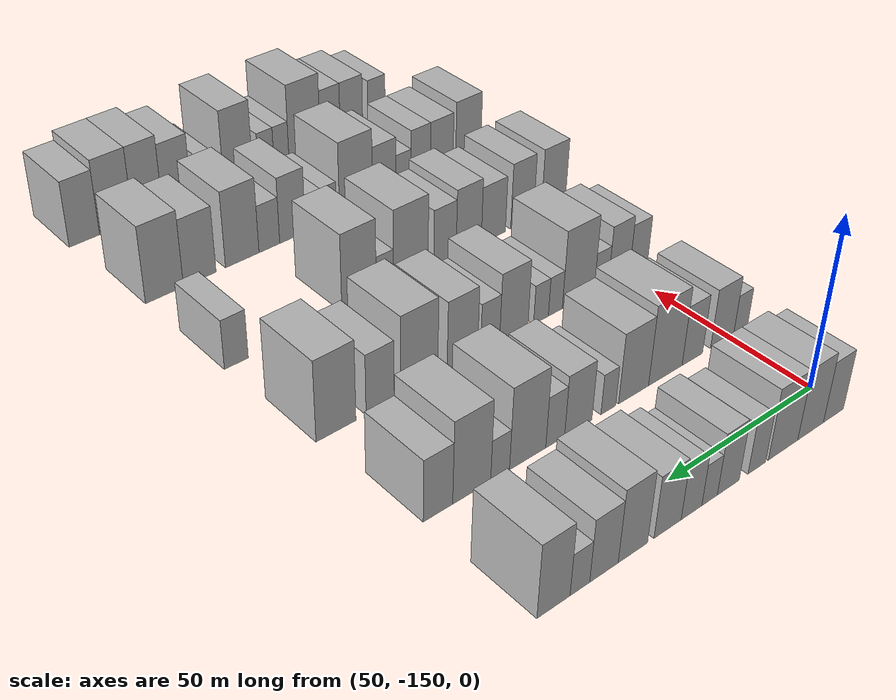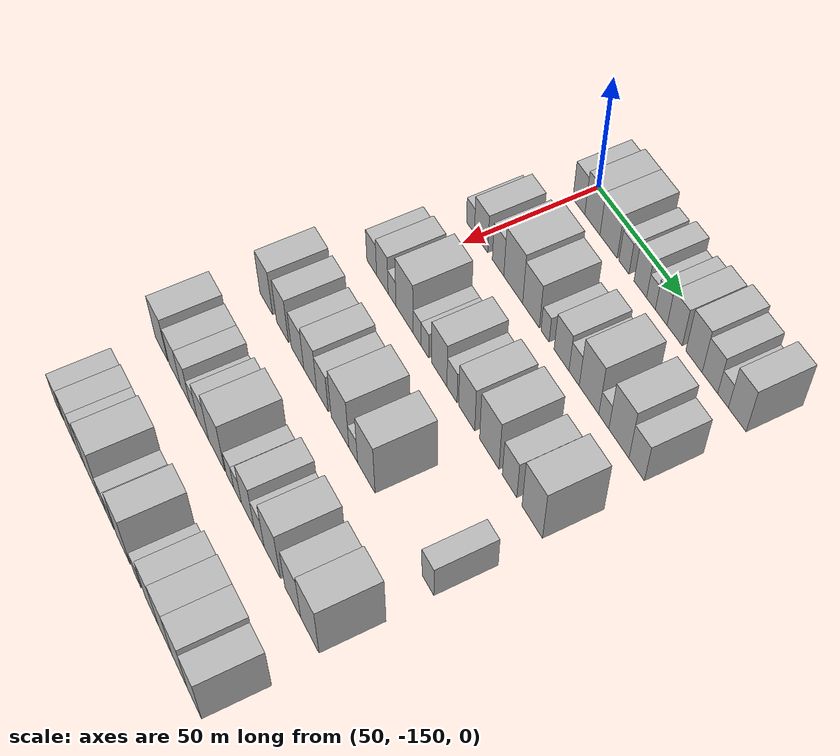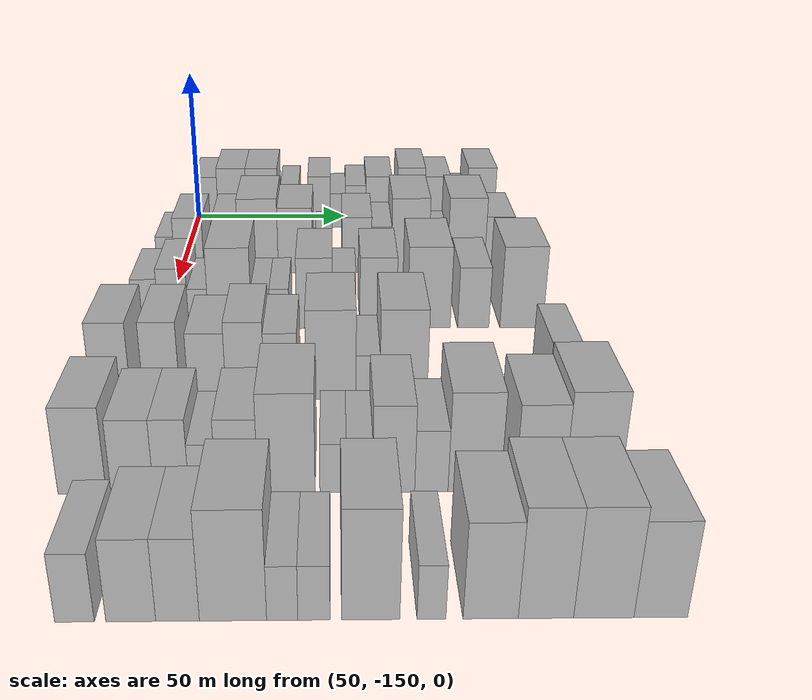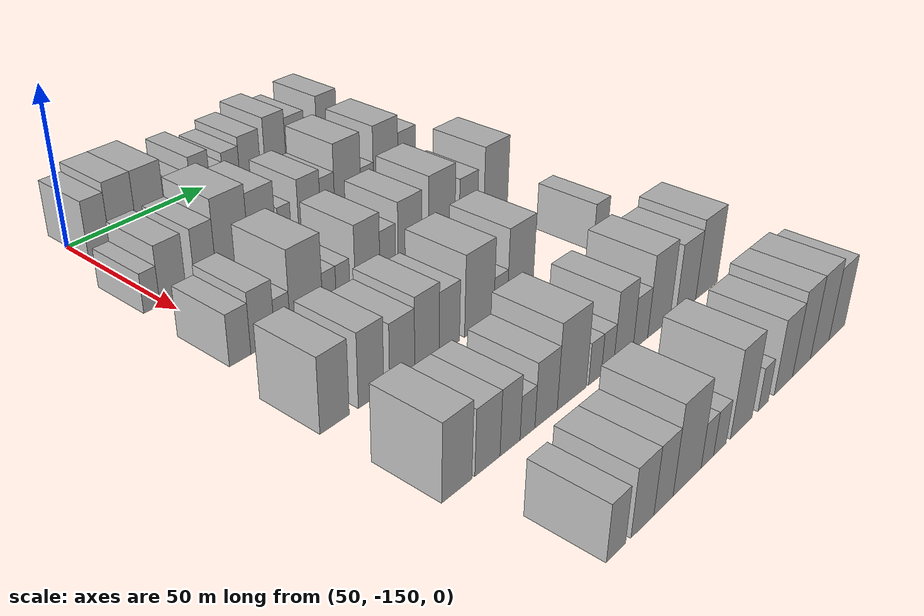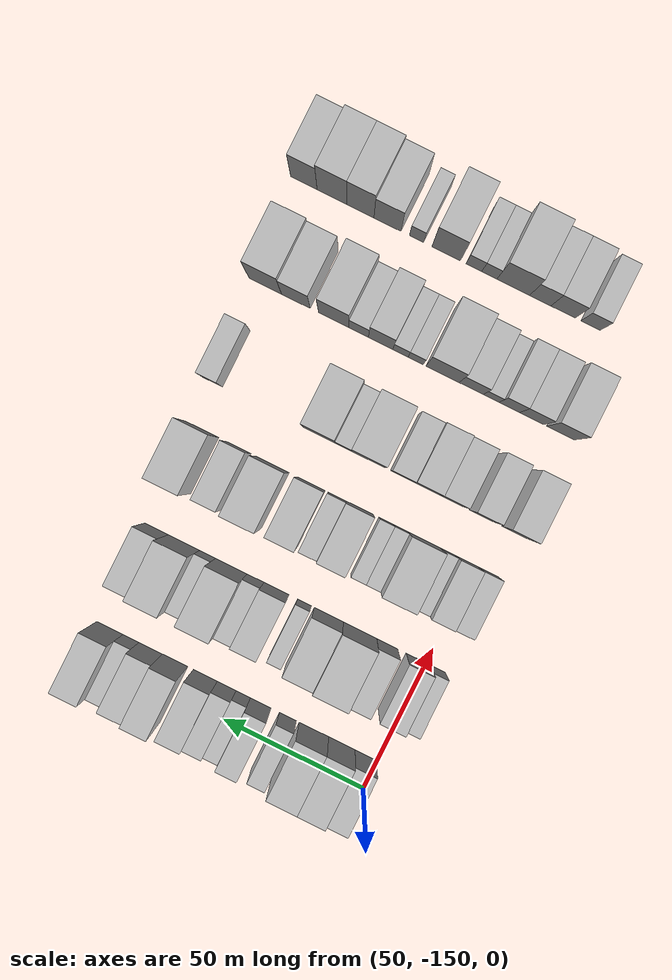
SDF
<sdf version="1.6">
 <world name="default">
  <model name="building_49">
   <static>1</static>
   <pose>50.0000 -145.9046 0 0.000000 0.000000 0.000000</pose>
   <link name="link">
    <pose>0 0 9.00 0 0 0</pose>
    <collision name="collision"><geometry><box><size>20.0000 7.4969 18.0000</size></box></geometry></collision>
    <visual name="visual">
     <cast_shadows>0</cast_shadows>
     <geometry><box><size>20.0000 7.4969 18.0000</size></box></geometry>
     <material>
      <script>
       <uri>model://HANNAS_wall/materials/scripts</uri>
       <uri>model://HANNAS_wall/materials/textures</uri>
       <name>vrc/HANNAS_wall</name>
      </script>
     </material>
    </visual>
   </link>
  </model>
  <model name="building_50">
   <static>1</static>
   <pose>50.0000 -137.4338 0 0.000000 0.000000 0.000000</pose>
   <link name="link">
    <pose>0 0 10.50 0 0 0</pose>
    <collision name="collision"><geometry><box><size>20.0000 9.4446 21.0000</size></box></geometry></collision>
    <visual name="visual">
     <cast_shadows>0</cast_shadows>
     <geometry><box><size>20.0000 9.4446 21.0000</size></box></geometry>
     <material>
      <script>
       <uri>model://HANNAS_wall/materials/scripts</uri>
       <uri>model://HANNAS_wall/materials/textures</uri>
       <name>vrc/HANNAS_wall</name>
      </script>
     </material>
    </visual>
   </link>
  </model>
  <model name="building_51">
   <static>1</static>
   <pose>50.0000 -127.4654 0 0.000000 0.000000 0.000000</pose>
   <link name="link">
    <pose>0 0 10.50 0 0 0</pose>
    <collision name="collision"><geometry><box><size>20.0000 10.4922 21.0000</size></box></geometry></collision>
    <visual name="visual">
     <cast_shadows>0</cast_shadows>
     <geometry><box><size>20.0000 10.4922 21.0000</size></box></geometry>
     <material>
      <script>
       <uri>model://HANNAS_wall/materials/scripts</uri>
       <uri>model://HANNAS_wall/materials/textures</uri>
       <name>vrc/HANNAS_wall</name>
      </script>
     </material>
    </visual>
   </link>
  </model>
  <model name="building_52">
   <static>1</static>
   <pose>50.0000 -118.1912 0 0.000000 0.000000 0.000000</pose>
   <link name="link">
    <pose>0 0 7.50 0 0 0</pose>
    <collision name="collision"><geometry><box><size>20.0000 6.0561 15.0000</size></box></geometry></collision>
    <visual name="visual">
     <cast_shadows>0</cast_shadows>
     <geometry><box><size>20.0000 6.0561 15.0000</size></box></geometry>
     <material>
      <script>
       <uri>model://HANNAS_wall/materials/scripts</uri>
       <uri>model://HANNAS_wall/materials/textures</uri>
       <name>vrc/HANNAS_wall</name>
      </script>
     </material>
    </visual>
   </link>
  </model>
  <model name="building_53">
   <static>1</static>
   <pose>50.0000 -108.4824 0 0.000000 0.000000 0.000000</pose>
   <link name="link">
    <pose>0 0 9.00 0 0 0</pose>
    <collision name="collision"><geometry><box><size>20.0000 7.3614 18.0000</size></box></geometry></collision>
    <visual name="visual">
     <cast_shadows>0</cast_shadows>
     <geometry><box><size>20.0000 7.3614 18.0000</size></box></geometry>
     <material>
      <script>
       <uri>model://HANNAS_wall/materials/scripts</uri>
       <uri>model://HANNAS_wall/materials/textures</uri>
       <name>vrc/HANNAS_wall</name>
      </script>
     </material>
    </visual>
   </link>
  </model>
  <model name="building_54">
   <static>1</static>
   <pose>50.0000 -102.2450 0 0.000000 0.000000 0.000000</pose>
   <link name="link">
    <pose>0 0 6.00 0 0 0</pose>
    <collision name="collision"><geometry><box><size>20.0000 5.1135 12.0000</size></box></geometry></collision>
    <visual name="visual">
     <cast_shadows>0</cast_shadows>
     <geometry><box><size>20.0000 5.1135 12.0000</size></box></geometry>
     <material>
      <script>
       <uri>model://HANNAS_wall/materials/scripts</uri>
       <uri>model://HANNAS_wall/materials/textures</uri>
       <name>vrc/HANNAS_wall</name>
      </script>
     </material>
    </visual>
   </link>
  </model>
  <model name="building_55">
   <static>1</static>
   <pose>50.0000 -96.3450 0 0.000000 0.000000 0.000000</pose>
   <link name="link">
    <pose>0 0 7.50 0 0 0</pose>
    <collision name="collision"><geometry><box><size>20.0000 6.6864 15.0000</size></box></geometry></collision>
    <visual name="visual">
     <cast_shadows>0</cast_shadows>
     <geometry><box><size>20.0000 6.6864 15.0000</size></box></geometry>
     <material>
      <script>
       <uri>model://HANNAS_wall/materials/scripts</uri>
       <uri>model://HANNAS_wall/materials/textures</uri>
       <name>vrc/HANNAS_wall</name>
      </script>
     </material>
    </visual>
   </link>
  </model>
  <model name="building_56">
   <static>1</static>
   <pose>50.0000 -88.7126 0 0.000000 0.000000 0.000000</pose>
   <link name="link">
    <pose>0 0 9.00 0 0 0</pose>
    <collision name="collision"><geometry><box><size>20.0000 8.5783 18.0000</size></box></geometry></collision>
    <visual name="visual">
     <cast_shadows>0</cast_shadows>
     <geometry><box><size>20.0000 8.5783 18.0000</size></box></geometry>
     <material>
      <script>
       <uri>model://HANNAS_wall/materials/scripts</uri>
       <uri>model://HANNAS_wall/materials/textures</uri>
       <name>vrc/HANNAS_wall</name>
      </script>
     </material>
    </visual>
   </link>
  </model>
  <model name="building_57">
   <static>1</static>
   <pose>50.0000 -77.9405 0 0.000000 0.000000 0.000000</pose>
   <link name="link">
    <pose>0 0 10.50 0 0 0</pose>
    <collision name="collision"><geometry><box><size>20.0000 8.9660 21.0000</size></box></geometry></collision>
    <visual name="visual">
     <cast_shadows>0</cast_shadows>
     <geometry><box><size>20.0000 8.9660 21.0000</size></box></geometry>
     <material>
      <script>
       <uri>model://HANNAS_wall/materials/scripts</uri>
       <uri>model://HANNAS_wall/materials/textures</uri>
       <name>vrc/HANNAS_wall</name>
      </script>
     </material>
    </visual>
   </link>
  </model>
  <model name="building_58">
   <static>1</static>
   <pose>50.0000 -69.2409 0 0.000000 0.000000 0.000000</pose>
   <link name="link">
    <pose>0 0 9.00 0 0 0</pose>
    <collision name="collision"><geometry><box><size>20.0000 8.4332 18.0000</size></box></geometry></collision>
    <visual name="visual">
     <cast_shadows>0</cast_shadows>
     <geometry><box><size>20.0000 8.4332 18.0000</size></box></geometry>
     <material>
      <script>
       <uri>model://HANNAS_wall/materials/scripts</uri>
       <uri>model://HANNAS_wall/materials/textures</uri>
       <name>vrc/HANNAS_wall</name>
      </script>
     </material>
    </visual>
   </link>
  </model>
  <model name="building_59">
   <static>1</static>
   <pose>50.0000 -62.1792 0 0.000000 0.000000 0.000000</pose>
   <link name="link">
    <pose>0 0 6.00 0 0 0</pose>
    <collision name="collision"><geometry><box><size>20.0000 5.6902 12.0000</size></box></geometry></collision>
    <visual name="visual">
     <cast_shadows>0</cast_shadows>
     <geometry><box><size>20.0000 5.6902 12.0000</size></box></geometry>
     <material>
      <script>
       <uri>model://HANNAS_wall/materials/scripts</uri>
       <uri>model://HANNAS_wall/materials/textures</uri>
       <name>vrc/HANNAS_wall</name>
      </script>
     </material>
    </visual>
   </link>
  </model>
  <model name="building_60">
   <static>1</static>
   <pose>50.0000 -54.6696 0 0.000000 0.000000 0.000000</pose>
   <link name="link">
    <pose>0 0 10.50 0 0 0</pose>
    <collision name="collision"><geometry><box><size>20.0000 9.3292 21.0000</size></box></geometry></collision>
    <visual name="visual">
     <cast_shadows>0</cast_shadows>
     <geometry><box><size>20.0000 9.3292 21.0000</size></box></geometry>
     <material>
      <script>
       <uri>model://HANNAS_wall/materials/scripts</uri>
       <uri>model://HANNAS_wall/materials/textures</uri>
       <name>vrc/HANNAS_wall</name>
      </script>
     </material>
    </visual>
   </link>
  </model>
  <model name="building_178">
   <static>1</static>
   <pose>85.0000 -154.3340 0 0.000000 0.000000 0.000000</pose>
   <link name="link">
    <pose>0 0 6.00 0 0 0</pose>
    <collision name="collision"><geometry><box><size>20.0000 5.2907 12.0000</size></box></geometry></collision>
    <visual name="visual">
     <cast_shadows>0</cast_shadows>
     <geometry><box><size>20.0000 5.2907 12.0000</size></box></geometry>
     <material>
      <script>
       <uri>model://HANNAS_wall/materials/scripts</uri>
       <uri>model://HANNAS_wall/materials/textures</uri>
       <name>vrc/HANNAS_wall</name>
      </script>
     </material>
    </visual>
   </link>
  </model>
  <model name="building_179">
   <static>1</static>
   <pose>85.0000 -147.2985 0 0.000000 0.000000 0.000000</pose>
   <link name="link">
    <pose>0 0 9.00 0 0 0</pose>
    <collision name="collision"><geometry><box><size>20.0000 8.7803 18.0000</size></box></geometry></collision>
    <visual name="visual">
     <cast_shadows>0</cast_shadows>
     <geometry><box><size>20.0000 8.7803 18.0000</size></box></geometry>
     <material>
      <script>
       <uri>model://HANNAS_wall/materials/scripts</uri>
       <uri>model://HANNAS_wall/materials/textures</uri>
       <name>vrc/HANNAS_wall</name>
      </script>
     </material>
    </visual>
   </link>
  </model>
  <model name="building_180">
   <static>1</static>
   <pose>85.0000 -136.1703 0 0.000000 0.000000 0.000000</pose>
   <link name="link">
    <pose>0 0 9.00 0 0 0</pose>
    <collision name="collision"><geometry><box><size>20.0000 7.4761 18.0000</size></box></geometry></collision>
    <visual name="visual">
     <cast_shadows>0</cast_shadows>
     <geometry><box><size>20.0000 7.4761 18.0000</size></box></geometry>
     <material>
      <script>
       <uri>model://HANNAS_wall/materials/scripts</uri>
       <uri>model://HANNAS_wall/materials/textures</uri>
       <name>vrc/HANNAS_wall</name>
      </script>
     </material>
    </visual>
   </link>
  </model>
  <model name="building_181">
   <static>1</static>
   <pose>85.0000 -126.4591 0 0.000000 0.000000 0.000000</pose>
   <link name="link">
    <pose>0 0 12.00 0 0 0</pose>
    <collision name="collision"><geometry><box><size>20.0000 11.9464 24.0000</size></box></geometry></collision>
    <visual name="visual">
     <cast_shadows>0</cast_shadows>
     <geometry><box><size>20.0000 11.9464 24.0000</size></box></geometry>
     <material>
      <script>
       <uri>model://HANNAS_wall/materials/scripts</uri>
       <uri>model://HANNAS_wall/materials/textures</uri>
       <name>vrc/HANNAS_wall</name>
      </script>
     </material>
    </visual>
   </link>
  </model>
  <model name="building_182">
   <static>1</static>
   <pose>85.0000 -115.3145 0 0.000000 0.000000 0.000000</pose>
   <link name="link">
    <pose>0 0 10.50 0 0 0</pose>
    <collision name="collision"><geometry><box><size>20.0000 10.3427 21.0000</size></box></geometry></collision>
    <visual name="visual">
     <cast_shadows>0</cast_shadows>
     <geometry><box><size>20.0000 10.3427 21.0000</size></box></geometry>
     <material>
      <script>
       <uri>model://HANNAS_wall/materials/scripts</uri>
       <uri>model://HANNAS_wall/materials/textures</uri>
       <name>vrc/HANNAS_wall</name>
      </script>
     </material>
    </visual>
   </link>
  </model>
  <model name="building_183">
   <static>1</static>
   <pose>85.0000 -106.6710 0 0.000000 0.000000 0.000000</pose>
   <link name="link">
    <pose>0 0 6.00 0 0 0</pose>
    <collision name="collision"><geometry><box><size>20.0000 4.9444 12.0000</size></box></geometry></collision>
    <visual name="visual">
     <cast_shadows>0</cast_shadows>
     <geometry><box><size>20.0000 4.9444 12.0000</size></box></geometry>
     <material>
      <script>
       <uri>model://HANNAS_wall/materials/scripts</uri>
       <uri>model://HANNAS_wall/materials/textures</uri>
       <name>vrc/HANNAS_wall</name>
      </script>
     </material>
    </visual>
   </link>
  </model>
  <model name="building_184">
   <static>1</static>
   <pose>85.0000 -96.7489 0 0.000000 0.000000 0.000000</pose>
   <link name="link">
    <pose>0 0 9.00 0 0 0</pose>
    <collision name="collision"><geometry><box><size>20.0000 8.8998 18.0000</size></box></geometry></collision>
    <visual name="visual">
     <cast_shadows>0</cast_shadows>
     <geometry><box><size>20.0000 8.8998 18.0000</size></box></geometry>
     <material>
      <script>
       <uri>model://HANNAS_wall/materials/scripts</uri>
       <uri>model://HANNAS_wall/materials/textures</uri>
       <name>vrc/HANNAS_wall</name>
      </script>
     </material>
    </visual>
   </link>
  </model>
  <model name="building_185">
   <static>1</static>
   <pose>85.0000 -89.2930 0 0.000000 0.000000 0.000000</pose>
   <link name="link">
    <pose>0 0 7.50 0 0 0</pose>
    <collision name="collision"><geometry><box><size>20.0000 6.0120 15.0000</size></box></geometry></collision>
    <visual name="visual">
     <cast_shadows>0</cast_shadows>
     <geometry><box><size>20.0000 6.0120 15.0000</size></box></geometry>
     <material>
      <script>
       <uri>model://HANNAS_wall/materials/scripts</uri>
       <uri>model://HANNAS_wall/materials/textures</uri>
       <name>vrc/HANNAS_wall</name>
      </script>
     </material>
    </visual>
   </link>
  </model>
  <model name="building_186">
   <static>1</static>
   <pose>85.0000 -80.6456 0 0.000000 0.000000 0.000000</pose>
   <link name="link">
    <pose>0 0 12.00 0 0 0</pose>
    <collision name="collision"><geometry><box><size>20.0000 11.2827 24.0000</size></box></geometry></collision>
    <visual name="visual">
     <cast_shadows>0</cast_shadows>
     <geometry><box><size>20.0000 11.2827 24.0000</size></box></geometry>
     <material>
      <script>
       <uri>model://HANNAS_wall/materials/scripts</uri>
       <uri>model://HANNAS_wall/materials/textures</uri>
       <name>vrc/HANNAS_wall</name>
      </script>
     </material>
    </visual>
   </link>
  </model>
  <model name="building_187">
   <static>1</static>
   <pose>85.0000 -72.1506 0 0.000000 0.000000 0.000000</pose>
   <link name="link">
    <pose>0 0 6.00 0 0 0</pose>
    <collision name="collision"><geometry><box><size>20.0000 5.7074 12.0000</size></box></geometry></collision>
    <visual name="visual">
     <cast_shadows>0</cast_shadows>
     <geometry><box><size>20.0000 5.7074 12.0000</size></box></geometry>
     <material>
      <script>
       <uri>model://HANNAS_wall/materials/scripts</uri>
       <uri>model://HANNAS_wall/materials/textures</uri>
       <name>vrc/HANNAS_wall</name>
      </script>
     </material>
    </visual>
   </link>
  </model>
  <model name="building_188">
   <static>1</static>
   <pose>85.0000 -63.6868 0 0.000000 0.000000 0.000000</pose>
   <link name="link">
    <pose>0 0 12.00 0 0 0</pose>
    <collision name="collision"><geometry><box><size>20.0000 11.2201 24.0000</size></box></geometry></collision>
    <visual name="visual">
     <cast_shadows>0</cast_shadows>
     <geometry><box><size>20.0000 11.2201 24.0000</size></box></geometry>
     <material>
      <script>
       <uri>model://HANNAS_wall/materials/scripts</uri>
       <uri>model://HANNAS_wall/materials/textures</uri>
       <name>vrc/HANNAS_wall</name>
      </script>
     </material>
    </visual>
   </link>
  </model>
  <model name="building_189">
   <static>1</static>
   <pose>85.0000 -53.8672 0 0.000000 0.000000 0.000000</pose>
   <link name="link">
    <pose>0 0 9.00 0 0 0</pose>
    <collision name="collision"><geometry><box><size>20.0000 8.4193 18.0000</size></box></geometry></collision>
    <visual name="visual">
     <cast_shadows>0</cast_shadows>
     <geometry><box><size>20.0000 8.4193 18.0000</size></box></geometry>
     <material>
      <script>
       <uri>model://HANNAS_wall/materials/scripts</uri>
       <uri>model://HANNAS_wall/materials/textures</uri>
       <name>vrc/HANNAS_wall</name>
      </script>
     </material>
    </visual>
   </link>
  </model>
  <model name="building_301">
   <static>1</static>
   <pose>120.0000 -154.4039 0 0.000000 0.000000 0.000000</pose>
   <link name="link">
    <pose>0 0 7.50 0 0 0</pose>
    <collision name="collision"><geometry><box><size>20.0000 6.9218 15.0000</size></box></geometry></collision>
    <visual name="visual">
     <cast_shadows>0</cast_shadows>
     <geometry><box><size>20.0000 6.9218 15.0000</size></box></geometry>
     <material>
      <script>
       <uri>model://HANNAS_wall/materials/scripts</uri>
       <uri>model://HANNAS_wall/materials/textures</uri>
       <name>vrc/HANNAS_wall</name>
      </script>
     </material>
    </visual>
   </link>
  </model>
  <model name="building_302">
   <static>1</static>
   <pose>120.0000 -146.9361 0 0.000000 0.000000 0.000000</pose>
   <link name="link">
    <pose>0 0 9.00 0 0 0</pose>
    <collision name="collision"><geometry><box><size>20.0000 8.0138 18.0000</size></box></geometry></collision>
    <visual name="visual">
     <cast_shadows>0</cast_shadows>
     <geometry><box><size>20.0000 8.0138 18.0000</size></box></geometry>
     <material>
      <script>
       <uri>model://HANNAS_wall/materials/scripts</uri>
       <uri>model://HANNAS_wall/materials/textures</uri>
       <name>vrc/HANNAS_wall</name>
      </script>
     </material>
    </visual>
   </link>
  </model>
  <model name="building_303">
   <static>1</static>
   <pose>120.0000 -140.2536 0 0.000000 0.000000 0.000000</pose>
   <link name="link">
    <pose>0 0 6.00 0 0 0</pose>
    <collision name="collision"><geometry><box><size>20.0000 5.3513 12.0000</size></box></geometry></collision>
    <visual name="visual">
     <cast_shadows>0</cast_shadows>
     <geometry><box><size>20.0000 5.3513 12.0000</size></box></geometry>
     <material>
      <script>
       <uri>model://HANNAS_wall/materials/scripts</uri>
       <uri>model://HANNAS_wall/materials/textures</uri>
       <name>vrc/HANNAS_wall</name>
      </script>
     </material>
    </visual>
   </link>
  </model>
  <model name="building_304">
   <static>1</static>
   <pose>120.0000 -131.7788 0 0.000000 0.000000 0.000000</pose>
   <link name="link">
    <pose>0 0 12.00 0 0 0</pose>
    <collision name="collision"><geometry><box><size>20.0000 11.5983 24.0000</size></box></geometry></collision>
    <visual name="visual">
     <cast_shadows>0</cast_shadows>
     <geometry><box><size>20.0000 11.5983 24.0000</size></box></geometry>
     <material>
      <script>
       <uri>model://HANNAS_wall/materials/scripts</uri>
       <uri>model://HANNAS_wall/materials/textures</uri>
       <name>vrc/HANNAS_wall</name>
      </script>
     </material>
    </visual>
   </link>
  </model>
  <model name="building_305">
   <static>1</static>
   <pose>120.0000 -123.4909 0 0.000000 0.000000 0.000000</pose>
   <link name="link">
    <pose>0 0 6.00 0 0 0</pose>
    <collision name="collision"><geometry><box><size>20.0000 4.9775 12.0000</size></box></geometry></collision>
    <visual name="visual">
     <cast_shadows>0</cast_shadows>
     <geometry><box><size>20.0000 4.9775 12.0000</size></box></geometry>
     <material>
      <script>
       <uri>model://HANNAS_wall/materials/scripts</uri>
       <uri>model://HANNAS_wall/materials/textures</uri>
       <name>vrc/HANNAS_wall</name>
      </script>
     </material>
    </visual>
   </link>
  </model>
  <model name="building_306">
   <static>1</static>
   <pose>120.0000 -118.4007 0 0.000000 0.000000 0.000000</pose>
   <link name="link">
    <pose>0 0 6.00 0 0 0</pose>
    <collision name="collision"><geometry><box><size>20.0000 5.2030 12.0000</size></box></geometry></collision>
    <visual name="visual">
     <cast_shadows>0</cast_shadows>
     <geometry><box><size>20.0000 5.2030 12.0000</size></box></geometry>
     <material>
      <script>
       <uri>model://HANNAS_wall/materials/scripts</uri>
       <uri>model://HANNAS_wall/materials/textures</uri>
       <name>vrc/HANNAS_wall</name>
      </script>
     </material>
    </visual>
   </link>
  </model>
  <model name="building_307">
   <static>1</static>
   <pose>120.0000 -108.9525 0 0.000000 0.000000 0.000000</pose>
   <link name="link">
    <pose>0 0 10.50 0 0 0</pose>
    <collision name="collision"><geometry><box><size>20.0000 9.6935 21.0000</size></box></geometry></collision>
    <visual name="visual">
     <cast_shadows>0</cast_shadows>
     <geometry><box><size>20.0000 9.6935 21.0000</size></box></geometry>
     <material>
      <script>
       <uri>model://HANNAS_wall/materials/scripts</uri>
       <uri>model://HANNAS_wall/materials/textures</uri>
       <name>vrc/HANNAS_wall</name>
      </script>
     </material>
    </visual>
   </link>
  </model>
  <model name="building_308">
   <static>1</static>
   <pose>120.0000 -100.9154 0 0.000000 0.000000 0.000000</pose>
   <link name="link">
    <pose>0 0 7.50 0 0 0</pose>
    <collision name="collision"><geometry><box><size>20.0000 6.3807 15.0000</size></box></geometry></collision>
    <visual name="visual">
     <cast_shadows>0</cast_shadows>
     <geometry><box><size>20.0000 6.3807 15.0000</size></box></geometry>
     <material>
      <script>
       <uri>model://HANNAS_wall/materials/scripts</uri>
       <uri>model://HANNAS_wall/materials/textures</uri>
       <name>vrc/HANNAS_wall</name>
      </script>
     </material>
    </visual>
   </link>
  </model>
  <model name="building_309">
   <static>1</static>
   <pose>120.0000 -91.7568 0 0.000000 0.000000 0.000000</pose>
   <link name="link">
    <pose>0 0 10.50 0 0 0</pose>
    <collision name="collision"><geometry><box><size>20.0000 9.9363 21.0000</size></box></geometry></collision>
    <visual name="visual">
     <cast_shadows>0</cast_shadows>
     <geometry><box><size>20.0000 9.9363 21.0000</size></box></geometry>
     <material>
      <script>
       <uri>model://HANNAS_wall/materials/scripts</uri>
       <uri>model://HANNAS_wall/materials/textures</uri>
       <name>vrc/HANNAS_wall</name>
      </script>
     </material>
    </visual>
   </link>
  </model>
  <model name="building_310">
   <static>1</static>
   <pose>120.0000 -77.9792 0 0.000000 0.000000 0.000000</pose>
   <link name="link">
    <pose>0 0 12.00 0 0 0</pose>
    <collision name="collision"><geometry><box><size>20.0000 11.6189 24.0000</size></box></geometry></collision>
    <visual name="visual">
     <cast_shadows>0</cast_shadows>
     <geometry><box><size>20.0000 11.6189 24.0000</size></box></geometry>
     <material>
      <script>
       <uri>model://HANNAS_wall/materials/scripts</uri>
       <uri>model://HANNAS_wall/materials/textures</uri>
       <name>vrc/HANNAS_wall</name>
      </script>
     </material>
    </visual>
   </link>
  </model>
  <model name="building_311">
   <static>1</static>
   <pose>120.0000 -65.9254 0 0.000000 0.000000 0.000000</pose>
   <link name="link">
    <pose>0 0 9.00 0 0 0</pose>
    <collision name="collision"><geometry><box><size>20.0000 8.4889 18.0000</size></box></geometry></collision>
    <visual name="visual">
     <cast_shadows>0</cast_shadows>
     <geometry><box><size>20.0000 8.4889 18.0000</size></box></geometry>
     <material>
      <script>
       <uri>model://HANNAS_wall/materials/scripts</uri>
       <uri>model://HANNAS_wall/materials/textures</uri>
       <name>vrc/HANNAS_wall</name>
      </script>
     </material>
    </visual>
   </link>
  </model>
  <model name="building_312">
   <static>1</static>
   <pose>120.0000 -52.8547 0 0.000000 0.000000 0.000000</pose>
   <link name="link">
    <pose>0 0 12.00 0 0 0</pose>
    <collision name="collision"><geometry><box><size>20.0000 11.6524 24.0000</size></box></geometry></collision>
    <visual name="visual">
     <cast_shadows>0</cast_shadows>
     <geometry><box><size>20.0000 11.6524 24.0000</size></box></geometry>
     <material>
      <script>
       <uri>model://HANNAS_wall/materials/scripts</uri>
       <uri>model://HANNAS_wall/materials/textures</uri>
       <name>vrc/HANNAS_wall</name>
      </script>
     </material>
    </visual>
   </link>
  </model>
  <model name="building_426">
   <static>1</static>
   <pose>155.0000 -156.8336 0 0.000000 0.000000 0.000000</pose>
   <link name="link">
    <pose>0 0 10.50 0 0 0</pose>
    <collision name="collision"><geometry><box><size>20.0000 9.4194 21.0000</size></box></geometry></collision>
    <visual name="visual">
     <cast_shadows>0</cast_shadows>
     <geometry><box><size>20.0000 9.4194 21.0000</size></box></geometry>
     <material>
      <script>
       <uri>model://HANNAS_wall/materials/scripts</uri>
       <uri>model://HANNAS_wall/materials/textures</uri>
       <name>vrc/HANNAS_wall</name>
      </script>
     </material>
    </visual>
   </link>
  </model>
  <model name="building_427">
   <static>1</static>
   <pose>155.0000 -144.7771 0 0.000000 0.000000 0.000000</pose>
   <link name="link">
    <pose>0 0 10.50 0 0 0</pose>
    <collision name="collision"><geometry><box><size>20.0000 8.6937 21.0000</size></box></geometry></collision>
    <visual name="visual">
     <cast_shadows>0</cast_shadows>
     <geometry><box><size>20.0000 8.6937 21.0000</size></box></geometry>
     <material>
      <script>
       <uri>model://HANNAS_wall/materials/scripts</uri>
       <uri>model://HANNAS_wall/materials/textures</uri>
       <name>vrc/HANNAS_wall</name>
      </script>
     </material>
    </visual>
   </link>
  </model>
  <model name="building_428">
   <static>1</static>
   <pose>155.0000 -133.9581 0 0.000000 0.000000 0.000000</pose>
   <link name="link">
    <pose>0 0 9.00 0 0 0</pose>
    <collision name="collision"><geometry><box><size>20.0000 8.9444 18.0000</size></box></geometry></collision>
    <visual name="visual">
     <cast_shadows>0</cast_shadows>
     <geometry><box><size>20.0000 8.9444 18.0000</size></box></geometry>
     <material>
      <script>
       <uri>model://HANNAS_wall/materials/scripts</uri>
       <uri>model://HANNAS_wall/materials/textures</uri>
       <name>vrc/HANNAS_wall</name>
      </script>
     </material>
    </visual>
   </link>
  </model>
  <model name="building_429">
   <static>1</static>
   <pose>155.0000 -124.9263 0 0.000000 0.000000 0.000000</pose>
   <link name="link">
    <pose>0 0 10.50 0 0 0</pose>
    <collision name="collision"><geometry><box><size>20.0000 9.1191 21.0000</size></box></geometry></collision>
    <visual name="visual">
     <cast_shadows>0</cast_shadows>
     <geometry><box><size>20.0000 9.1191 21.0000</size></box></geometry>
     <material>
      <script>
       <uri>model://HANNAS_wall/materials/scripts</uri>
       <uri>model://HANNAS_wall/materials/textures</uri>
       <name>vrc/HANNAS_wall</name>
      </script>
     </material>
    </visual>
   </link>
  </model>
  <model name="building_430">
   <static>1</static>
   <pose>155.0000 -116.3978 0 0.000000 0.000000 0.000000</pose>
   <link name="link">
    <pose>0 0 9.00 0 0 0</pose>
    <collision name="collision"><geometry><box><size>20.0000 7.9379 18.0000</size></box></geometry></collision>
    <visual name="visual">
     <cast_shadows>0</cast_shadows>
     <geometry><box><size>20.0000 7.9379 18.0000</size></box></geometry>
     <material>
      <script>
       <uri>model://HANNAS_wall/materials/scripts</uri>
       <uri>model://HANNAS_wall/materials/textures</uri>
       <name>vrc/HANNAS_wall</name>
      </script>
     </material>
    </visual>
   </link>
  </model>
  <model name="building_431">
   <static>1</static>
   <pose>155.0000 -104.4757 0 0.000000 0.000000 0.000000</pose>
   <link name="link">
    <pose>0 0 12.00 0 0 0</pose>
    <collision name="collision"><geometry><box><size>20.0000 11.9063 24.0000</size></box></geometry></collision>
    <visual name="visual">
     <cast_shadows>0</cast_shadows>
     <geometry><box><size>20.0000 11.9063 24.0000</size></box></geometry>
     <material>
      <script>
       <uri>model://HANNAS_wall/materials/scripts</uri>
       <uri>model://HANNAS_wall/materials/textures</uri>
       <name>vrc/HANNAS_wall</name>
      </script>
     </material>
    </visual>
   </link>
  </model>
  <model name="building_432">
   <static>1</static>
   <pose>155.0000 -95.6680 0 0.000000 0.000000 0.000000</pose>
   <link name="link">
    <pose>0 0 6.00 0 0 0</pose>
    <collision name="collision"><geometry><box><size>20.0000 5.7091 12.0000</size></box></geometry></collision>
    <visual name="visual">
     <cast_shadows>0</cast_shadows>
     <geometry><box><size>20.0000 5.7091 12.0000</size></box></geometry>
     <material>
      <script>
       <uri>model://HANNAS_wall/materials/scripts</uri>
       <uri>model://HANNAS_wall/materials/textures</uri>
       <name>vrc/HANNAS_wall</name>
      </script>
     </material>
    </visual>
   </link>
  </model>
  <model name="building_433">
   <static>1</static>
   <pose>155.0000 -87.1746 0 0.000000 0.000000 0.000000</pose>
   <link name="link">
    <pose>0 0 12.00 0 0 0</pose>
    <collision name="collision"><geometry><box><size>20.0000 11.2777 24.0000</size></box></geometry></collision>
    <visual name="visual">
     <cast_shadows>0</cast_shadows>
     <geometry><box><size>20.0000 11.2777 24.0000</size></box></geometry>
     <material>
      <script>
       <uri>model://HANNAS_wall/materials/scripts</uri>
       <uri>model://HANNAS_wall/materials/textures</uri>
       <name>vrc/HANNAS_wall</name>
      </script>
     </material>
    </visual>
   </link>
  </model>
  <model name="building_434">
   <static>1</static>
   <pose>155.0000 -48.9540 0 0.000000 0.000000 0.000000</pose>
   <link name="link">
    <pose>0 0 7.50 0 0 0</pose>
    <collision name="collision"><geometry><box><size>20.0000 7.0545 15.0000</size></box></geometry></collision>
    <visual name="visual">
     <cast_shadows>0</cast_shadows>
     <geometry><box><size>20.0000 7.0545 15.0000</size></box></geometry>
     <material>
      <script>
       <uri>model://HANNAS_wall/materials/scripts</uri>
       <uri>model://HANNAS_wall/materials/textures</uri>
       <name>vrc/HANNAS_wall</name>
      </script>
     </material>
    </visual>
   </link>
  </model>
  <model name="building_553">
   <static>1</static>
   <pose>190.0000 -155.7305 0 0.000000 0.000000 0.000000</pose>
   <link name="link">
    <pose>0 0 10.50 0 0 0</pose>
    <collision name="collision"><geometry><box><size>20.0000 9.9262 21.0000</size></box></geometry></collision>
    <visual name="visual">
     <cast_shadows>0</cast_shadows>
     <geometry><box><size>20.0000 9.9262 21.0000</size></box></geometry>
     <material>
      <script>
       <uri>model://HANNAS_wall/materials/scripts</uri>
       <uri>model://HANNAS_wall/materials/textures</uri>
       <name>vrc/HANNAS_wall</name>
      </script>
     </material>
    </visual>
   </link>
  </model>
  <model name="building_554">
   <static>1</static>
   <pose>190.0000 -145.3907 0 0.000000 0.000000 0.000000</pose>
   <link name="link">
    <pose>0 0 9.00 0 0 0</pose>
    <collision name="collision"><geometry><box><size>20.0000 8.7534 18.0000</size></box></geometry></collision>
    <visual name="visual">
     <cast_shadows>0</cast_shadows>
     <geometry><box><size>20.0000 8.7534 18.0000</size></box></geometry>
     <material>
      <script>
       <uri>model://HANNAS_wall/materials/scripts</uri>
       <uri>model://HANNAS_wall/materials/textures</uri>
       <name>vrc/HANNAS_wall</name>
      </script>
     </material>
    </visual>
   </link>
  </model>
  <model name="building_555">
   <static>1</static>
   <pose>190.0000 -137.3804 0 0.000000 0.000000 0.000000</pose>
   <link name="link">
    <pose>0 0 9.00 0 0 0</pose>
    <collision name="collision"><geometry><box><size>20.0000 7.2672 18.0000</size></box></geometry></collision>
    <visual name="visual">
     <cast_shadows>0</cast_shadows>
     <geometry><box><size>20.0000 7.2672 18.0000</size></box></geometry>
     <material>
      <script>
       <uri>model://HANNAS_wall/materials/scripts</uri>
       <uri>model://HANNAS_wall/materials/textures</uri>
       <name>vrc/HANNAS_wall</name>
      </script>
     </material>
    </visual>
   </link>
  </model>
  <model name="building_556">
   <static>1</static>
   <pose>190.0000 -130.9617 0 0.000000 0.000000 0.000000</pose>
   <link name="link">
    <pose>0 0 6.00 0 0 0</pose>
    <collision name="collision"><geometry><box><size>20.0000 5.5703 12.0000</size></box></geometry></collision>
    <visual name="visual">
     <cast_shadows>0</cast_shadows>
     <geometry><box><size>20.0000 5.5703 12.0000</size></box></geometry>
     <material>
      <script>
       <uri>model://HANNAS_wall/materials/scripts</uri>
       <uri>model://HANNAS_wall/materials/textures</uri>
       <name>vrc/HANNAS_wall</name>
      </script>
     </material>
    </visual>
   </link>
  </model>
  <model name="building_557">
   <static>1</static>
   <pose>190.0000 -123.8619 0 0.000000 0.000000 0.000000</pose>
   <link name="link">
    <pose>0 0 9.00 0 0 0</pose>
    <collision name="collision"><geometry><box><size>20.0000 8.6294 18.0000</size></box></geometry></collision>
    <visual name="visual">
     <cast_shadows>0</cast_shadows>
     <geometry><box><size>20.0000 8.6294 18.0000</size></box></geometry>
     <material>
      <script>
       <uri>model://HANNAS_wall/materials/scripts</uri>
       <uri>model://HANNAS_wall/materials/textures</uri>
       <name>vrc/HANNAS_wall</name>
      </script>
     </material>
    </visual>
   </link>
  </model>
  <model name="building_558">
   <static>1</static>
   <pose>190.0000 -113.6390 0 0.000000 0.000000 0.000000</pose>
   <link name="link">
    <pose>0 0 12.00 0 0 0</pose>
    <collision name="collision"><geometry><box><size>20.0000 11.8162 24.0000</size></box></geometry></collision>
    <visual name="visual">
     <cast_shadows>0</cast_shadows>
     <geometry><box><size>20.0000 11.8162 24.0000</size></box></geometry>
     <material>
      <script>
       <uri>model://HANNAS_wall/materials/scripts</uri>
       <uri>model://HANNAS_wall/materials/textures</uri>
       <name>vrc/HANNAS_wall</name>
      </script>
     </material>
    </visual>
   </link>
  </model>
  <model name="building_559">
   <static>1</static>
   <pose>190.0000 -104.0127 0 0.000000 0.000000 0.000000</pose>
   <link name="link">
    <pose>0 0 6.00 0 0 0</pose>
    <collision name="collision"><geometry><box><size>20.0000 5.4364 12.0000</size></box></geometry></collision>
    <visual name="visual">
     <cast_shadows>0</cast_shadows>
     <geometry><box><size>20.0000 5.4364 12.0000</size></box></geometry>
     <material>
      <script>
       <uri>model://HANNAS_wall/materials/scripts</uri>
       <uri>model://HANNAS_wall/materials/textures</uri>
       <name>vrc/HANNAS_wall</name>
      </script>
     </material>
    </visual>
   </link>
  </model>
  <model name="building_560">
   <static>1</static>
   <pose>190.0000 -98.5755 0 0.000000 0.000000 0.000000</pose>
   <link name="link">
    <pose>0 0 6.00 0 0 0</pose>
    <collision name="collision"><geometry><box><size>20.0000 5.4379 12.0000</size></box></geometry></collision>
    <visual name="visual">
     <cast_shadows>0</cast_shadows>
     <geometry><box><size>20.0000 5.4379 12.0000</size></box></geometry>
     <material>
      <script>
       <uri>model://HANNAS_wall/materials/scripts</uri>
       <uri>model://HANNAS_wall/materials/textures</uri>
       <name>vrc/HANNAS_wall</name>
      </script>
     </material>
    </visual>
   </link>
  </model>
  <model name="building_561">
   <static>1</static>
   <pose>190.0000 -91.5005 0 0.000000 0.000000 0.000000</pose>
   <link name="link">
    <pose>0 0 10.50 0 0 0</pose>
    <collision name="collision"><geometry><box><size>20.0000 8.7121 21.0000</size></box></geometry></collision>
    <visual name="visual">
     <cast_shadows>0</cast_shadows>
     <geometry><box><size>20.0000 8.7121 21.0000</size></box></geometry>
     <material>
      <script>
       <uri>model://HANNAS_wall/materials/scripts</uri>
       <uri>model://HANNAS_wall/materials/textures</uri>
       <name>vrc/HANNAS_wall</name>
      </script>
     </material>
    </visual>
   </link>
  </model>
  <model name="building_562">
   <static>1</static>
   <pose>190.0000 -83.7000 0 0.000000 0.000000 0.000000</pose>
   <link name="link">
    <pose>0 0 7.50 0 0 0</pose>
    <collision name="collision"><geometry><box><size>20.0000 6.8889 15.0000</size></box></geometry></collision>
    <visual name="visual">
     <cast_shadows>0</cast_shadows>
     <geometry><box><size>20.0000 6.8889 15.0000</size></box></geometry>
     <material>
      <script>
       <uri>model://HANNAS_wall/materials/scripts</uri>
       <uri>model://HANNAS_wall/materials/textures</uri>
       <name>vrc/HANNAS_wall</name>
      </script>
     </material>
    </visual>
   </link>
  </model>
  <model name="building_563">
   <static>1</static>
   <pose>190.0000 -74.8188 0 0.000000 0.000000 0.000000</pose>
   <link name="link">
    <pose>0 0 12.00 0 0 0</pose>
    <collision name="collision"><geometry><box><size>20.0000 10.8736 24.0000</size></box></geometry></collision>
    <visual name="visual">
     <cast_shadows>0</cast_shadows>
     <geometry><box><size>20.0000 10.8736 24.0000</size></box></geometry>
     <material>
      <script>
       <uri>model://HANNAS_wall/materials/scripts</uri>
       <uri>model://HANNAS_wall/materials/textures</uri>
       <name>vrc/HANNAS_wall</name>
      </script>
     </material>
    </visual>
   </link>
  </model>
  <model name="building_564">
   <static>1</static>
   <pose>190.0000 -61.2768 0 0.000000 0.000000 0.000000</pose>
   <link name="link">
    <pose>0 0 10.50 0 0 0</pose>
    <collision name="collision"><geometry><box><size>20.0000 10.2103 21.0000</size></box></geometry></collision>
    <visual name="visual">
     <cast_shadows>0</cast_shadows>
     <geometry><box><size>20.0000 10.2103 21.0000</size></box></geometry>
     <material>
      <script>
       <uri>model://HANNAS_wall/materials/scripts</uri>
       <uri>model://HANNAS_wall/materials/textures</uri>
       <name>vrc/HANNAS_wall</name>
      </script>
     </material>
    </visual>
   </link>
  </model>
  <model name="building_565">
   <static>1</static>
   <pose>190.0000 -50.3776 0 0.000000 0.000000 0.000000</pose>
   <link name="link">
    <pose>0 0 12.00 0 0 0</pose>
    <collision name="collision"><geometry><box><size>20.0000 11.5881 24.0000</size></box></geometry></collision>
    <visual name="visual">
     <cast_shadows>0</cast_shadows>
     <geometry><box><size>20.0000 11.5881 24.0000</size></box></geometry>
     <material>
      <script>
       <uri>model://HANNAS_wall/materials/scripts</uri>
       <uri>model://HANNAS_wall/materials/textures</uri>
       <name>vrc/HANNAS_wall</name>
      </script>
     </material>
    </visual>
   </link>
  </model>
  <model name="building_680">
   <static>1</static>
   <pose>225.0000 -149.0262 0 0.000000 0.000000 0.000000</pose>
   <link name="link">
    <pose>0 0 7.50 0 0 0</pose>
    <collision name="collision"><geometry><box><size>20.0000 6.8685 15.0000</size></box></geometry></collision>
    <visual name="visual">
     <cast_shadows>0</cast_shadows>
     <geometry><box><size>20.0000 6.8685 15.0000</size></box></geometry>
     <material>
      <script>
       <uri>model://HANNAS_wall/materials/scripts</uri>
       <uri>model://HANNAS_wall/materials/textures</uri>
       <name>vrc/HANNAS_wall</name>
      </script>
     </material>
    </visual>
   </link>
  </model>
  <model name="building_681">
   <static>1</static>
   <pose>225.0000 -139.2526 0 0.000000 0.000000 0.000000</pose>
   <link name="link">
    <pose>0 0 9.00 0 0 0</pose>
    <collision name="collision"><geometry><box><size>20.0000 8.6785 18.0000</size></box></geometry></collision>
    <visual name="visual">
     <cast_shadows>0</cast_shadows>
     <geometry><box><size>20.0000 8.6785 18.0000</size></box></geometry>
     <material>
      <script>
       <uri>model://HANNAS_wall/materials/scripts</uri>
       <uri>model://HANNAS_wall/materials/textures</uri>
       <name>vrc/HANNAS_wall</name>
      </script>
     </material>
    </visual>
   </link>
  </model>
  <model name="building_682">
   <static>1</static>
   <pose>225.0000 -131.1186 0 0.000000 0.000000 0.000000</pose>
   <link name="link">
    <pose>0 0 9.00 0 0 0</pose>
    <collision name="collision"><geometry><box><size>20.0000 7.5894 18.0000</size></box></geometry></collision>
    <visual name="visual">
     <cast_shadows>0</cast_shadows>
     <geometry><box><size>20.0000 7.5894 18.0000</size></box></geometry>
     <material>
      <script>
       <uri>model://HANNAS_wall/materials/scripts</uri>
       <uri>model://HANNAS_wall/materials/textures</uri>
       <name>vrc/HANNAS_wall</name>
      </script>
     </material>
    </visual>
   </link>
  </model>
  <model name="building_683">
   <static>1</static>
   <pose>225.0000 -121.4752 0 0.000000 0.000000 0.000000</pose>
   <link name="link">
    <pose>0 0 12.00 0 0 0</pose>
    <collision name="collision"><geometry><box><size>20.0000 11.6974 24.0000</size></box></geometry></collision>
    <visual name="visual">
     <cast_shadows>0</cast_shadows>
     <geometry><box><size>20.0000 11.6974 24.0000</size></box></geometry>
     <material>
      <script>
       <uri>model://HANNAS_wall/materials/scripts</uri>
       <uri>model://HANNAS_wall/materials/textures</uri>
       <name>vrc/HANNAS_wall</name>
      </script>
     </material>
    </visual>
   </link>
  </model>
  <model name="building_684">
   <static>1</static>
   <pose>225.0000 -112.9052 0 0.000000 0.000000 0.000000</pose>
   <link name="link">
    <pose>0 0 6.00 0 0 0</pose>
    <collision name="collision"><geometry><box><size>20.0000 5.4426 12.0000</size></box></geometry></collision>
    <visual name="visual">
     <cast_shadows>0</cast_shadows>
     <geometry><box><size>20.0000 5.4426 12.0000</size></box></geometry>
     <material>
      <script>
       <uri>model://HANNAS_wall/materials/scripts</uri>
       <uri>model://HANNAS_wall/materials/textures</uri>
       <name>vrc/HANNAS_wall</name>
      </script>
     </material>
    </visual>
   </link>
  </model>
  <model name="building_685">
   <static>1</static>
   <pose>225.0000 -107.3767 0 0.000000 0.000000 0.000000</pose>
   <link name="link">
    <pose>0 0 6.00 0 0 0</pose>
    <collision name="collision"><geometry><box><size>20.0000 5.6144 12.0000</size></box></geometry></collision>
    <visual name="visual">
     <cast_shadows>0</cast_shadows>
     <geometry><box><size>20.0000 5.6144 12.0000</size></box></geometry>
     <material>
      <script>
       <uri>model://HANNAS_wall/materials/scripts</uri>
       <uri>model://HANNAS_wall/materials/textures</uri>
       <name>vrc/HANNAS_wall</name>
      </script>
     </material>
    </visual>
   </link>
  </model>
  <model name="building_686">
   <static>1</static>
   <pose>225.0000 -97.4801 0 0.000000 0.000000 0.000000</pose>
   <link name="link">
    <pose>0 0 12.00 0 0 0</pose>
    <collision name="collision"><geometry><box><size>20.0000 10.1788 24.0000</size></box></geometry></collision>
    <visual name="visual">
     <cast_shadows>0</cast_shadows>
     <geometry><box><size>20.0000 10.1788 24.0000</size></box></geometry>
     <material>
      <script>
       <uri>model://HANNAS_wall/materials/scripts</uri>
       <uri>model://HANNAS_wall/materials/textures</uri>
       <name>vrc/HANNAS_wall</name>
      </script>
     </material>
    </visual>
   </link>
  </model>
  <model name="building_687">
   <static>1</static>
   <pose>225.0000 -86.8687 0 0.000000 0.000000 0.000000</pose>
   <link name="link">
    <pose>0 0 6.00 0 0 0</pose>
    <collision name="collision"><geometry><box><size>20.0000 5.0440 12.0000</size></box></geometry></collision>
    <visual name="visual">
     <cast_shadows>0</cast_shadows>
     <geometry><box><size>20.0000 5.0440 12.0000</size></box></geometry>
     <material>
      <script>
       <uri>model://HANNAS_wall/materials/scripts</uri>
       <uri>model://HANNAS_wall/materials/textures</uri>
       <name>vrc/HANNAS_wall</name>
      </script>
     </material>
    </visual>
   </link>
  </model>
  <model name="building_688">
   <static>1</static>
   <pose>225.0000 -76.5226 0 0.000000 0.000000 0.000000</pose>
   <link name="link">
    <pose>0 0 10.50 0 0 0</pose>
    <collision name="collision"><geometry><box><size>20.0000 9.6482 21.0000</size></box></geometry></collision>
    <visual name="visual">
     <cast_shadows>0</cast_shadows>
     <geometry><box><size>20.0000 9.6482 21.0000</size></box></geometry>
     <material>
      <script>
       <uri>model://HANNAS_wall/materials/scripts</uri>
       <uri>model://HANNAS_wall/materials/textures</uri>
       <name>vrc/HANNAS_wall</name>
      </script>
     </material>
    </visual>
   </link>
  </model>
  <model name="building_689">
   <static>1</static>
   <pose>225.0000 -66.8458 0 0.000000 0.000000 0.000000</pose>
   <link name="link">
    <pose>0 0 12.00 0 0 0</pose>
    <collision name="collision"><geometry><box><size>20.0000 9.7054 24.0000</size></box></geometry></collision>
    <visual name="visual">
     <cast_shadows>0</cast_shadows>
     <geometry><box><size>20.0000 9.7054 24.0000</size></box></geometry>
     <material>
      <script>
       <uri>model://HANNAS_wall/materials/scripts</uri>
       <uri>model://HANNAS_wall/materials/textures</uri>
       <name>vrc/HANNAS_wall</name>
      </script>
     </material>
    </visual>
   </link>
  </model>
  <model name="building_690">
   <static>1</static>
   <pose>225.0000 -56.7077 0 0.000000 0.000000 0.000000</pose>
   <link name="link">
    <pose>0 0 12.00 0 0 0</pose>
    <collision name="collision"><geometry><box><size>20.0000 10.5707 24.0000</size></box></geometry></collision>
    <visual name="visual">
     <cast_shadows>0</cast_shadows>
     <geometry><box><size>20.0000 10.5707 24.0000</size></box></geometry>
     <material>
      <script>
       <uri>model://HANNAS_wall/materials/scripts</uri>
       <uri>model://HANNAS_wall/materials/textures</uri>
       <name>vrc/HANNAS_wall</name>
      </script>
     </material>
    </visual>
   </link>
  </model>
  <model name="building_691">
   <static>1</static>
   <pose>225.0000 -46.7093 0 0.000000 0.000000 0.000000</pose>
   <link name="link">
    <pose>0 0 10.50 0 0 0</pose>
    <collision name="collision"><geometry><box><size>20.0000 9.4261 21.0000</size></box></geometry></collision>
    <visual name="visual">
     <cast_shadows>0</cast_shadows>
     <geometry><box><size>20.0000 9.4261 21.0000</size></box></geometry>
     <material>
      <script>
       <uri>model://HANNAS_wall/materials/scripts</uri>
       <uri>model://HANNAS_wall/materials/textures</uri>
       <name>vrc/HANNAS_wall</name>
      </script>
     </material>
    </visual>
   </link>
  </model>
 </world>
</sdf>
